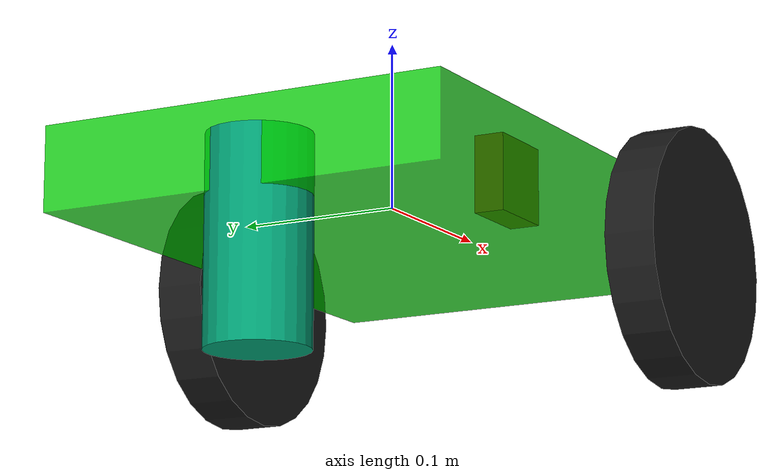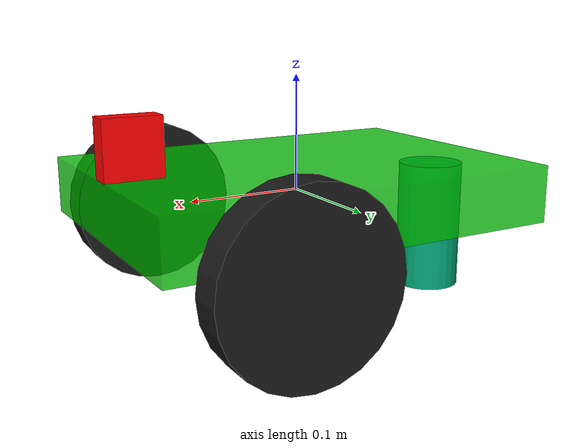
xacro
<?xml version="1.0"?>
<robot name="Jet" xmlns:xacro="http://www.ros.org/wiki/xacro">

  <!-- Import all Gazebo-customization elements, including Gazebo colors -->
  <xacro:include filename="$(find jet_description)/urdf/jet.gazebo"/>
  <!-- Import Rviz colors -->
  <xacro:include filename="$(find jet_description)/urdf/materials.xacro"/>

  <link name="base_link">
  </link>

  <link name="body_link">
    <visual>
      <origin rpy="0 0 0" xyz="0 0 0"/>
      <geometry>
        <box size=".35 .25 .05"/>
      </geometry>
      <material name="green">
        <color rgba="0 .8 .0 .8"/>
      </material>
    </visual>
    <collision>
      <origin rpy="0 0 0" xyz="0 0 0"/>
      <geometry>
        <box size=".35 .25 .05"/>
      </geometry>
    </collision>
    <inertial>
      <mass value="1"/>
      <inertia ixx="1e-3" ixy="0.0" ixz="0.0" iyy="1e-3" iyz="0.0" izz="1e-3"/>
    </inertial>
  </link>

  <link name="caster">
    <visual name='caster_visual'>
      <origin rpy="0 0 0" xyz="0 0 0"/>
      <geometry>
        <cylinder radius="0.03" length="0.12"/>
      </geometry>
    </visual>
    <collision name='caster_collision'>
      <origin rpy="0 0 0" xyz="0 0 0"/>
      <geometry>
        <cylinder radius="0.03" length="0.12"/>
      </geometry>

      <surface>
        <friction>
          <ode>
            <mu>0</mu>
            <mu2>0</mu2>
            <slip1>1.0</slip1>
            <slip2>1.0</slip2>
          </ode>
        </friction>
      </surface>
    </collision>
    <inertial>
      <mass value="10"/>
      <inertia ixx=".01425" ixy="0.0" ixz="0.0" iyy=".01425" iyz="0.0" izz=".0045"/>
    </inertial>
  </link>

  <link name="right_wheel">
    <visual>
      <geometry>
        <cylinder length="0.03" radius="0.0762"/>
      </geometry>
      <origin rpy="0 1.57075 1.57075" xyz="0 0 0"/>
      <material name="gray">
        <color rgba=".1 .1 .1 1"/>
      </material>
    </visual>
    <collision>
      <geometry>
        <cylinder length="0.03" radius="0.0762"/>
      </geometry>
      <origin rpy="0 1.57075 1.57075" xyz="0 0 0"/>
    </collision>
    <inertial>
      <mass value="1"/>
      <inertia ixx="1e-3" ixy="0.0" ixz="0.0" iyy="1e-3" iyz="0.0" izz="1e-3"/>
    </inertial>
  </link>

  <link name="left_wheel">
    <visual>
      <geometry>
        <cylinder length="0.03" radius="0.0762"/>
      </geometry>
      <origin rpy="0 1.57075 1.57075" xyz="0 0 0"/>
      <material name="gray">
        <color rgba=".1 .1 .1 1"/>
      </material>
    </visual>
    <collision>
      <geometry>
        <cylinder length="0.03" radius="0.0762"/>
      </geometry>
      <origin rpy="0 1.57075 1.57075" xyz="0 0 0"/>
    </collision>
    <inertial>
      <mass value="10"/>
      <inertia ixx="1e-3" ixy="0.0" ixz="0.0" iyy="1e-3" iyz="0.0" izz="1e-3"/>
    </inertial>
  </link>

  <link name="sonar1_link">
    <inertial>
      <mass value="1e-5" />
      <origin xyz="0 0 0" rpy="0 0 0"/>
      <inertia ixx="1e-6" ixy="0" ixz="0" iyy="1e-6" iyz="0" izz="1e-6" />
    </inertial>
  </link>

  <link name="sonar2_link">
    <inertial>
      <mass value="1e-5" />
      <origin xyz="0 0 0" rpy="0 0 0"/>
      <inertia ixx="1e-6" ixy="0" ixz="0" iyy="1e-6" iyz="0" izz="1e-6" />
    </inertial>
  </link>

  <link name="sonar3_link">
    <inertial>
      <mass value="1e-5" />
      <origin xyz="0 0 0" rpy="0 0 0"/>
      <inertia ixx="1e-6" ixy="0" ixz="0" iyy="1e-6" iyz="0" izz="1e-6" />
    </inertial>
  </link>

  <link name="camera_link">
    <collision>
      <origin xyz="0 0 0" rpy="0 0 0"/>
      <geometry>
        <box size=".05 .02 .05"/>
      </geometry>
    </collision>

    <visual>
      <origin xyz="0 0 0" rpy="0 0 0"/>
      <geometry>
        <box size=".05 .02 .05"/>
      </geometry>
      <material name="red">
        <color rgba="1.0 0 0 1"/>
      </material>
    </visual>

    <inertial>
      <mass value="1e-5" />
      <origin xyz="0 0 0" rpy="0 0 0"/>
      <inertia ixx="1e-6" ixy="0" ixz="0" iyy="1e-6" iyz="0" izz="1e-6" />
    </inertial>
  </link>

  <link name="gyro_link">
    <inertial>
      <mass value="0.001"/>
      <origin rpy="0 0 0" xyz="0 0 0"/>
      <inertia ixx="0.0001" ixy="0" ixz="0" iyy="0.000001" iyz="0" izz="0.0001"/>
    </inertial>
  </link>

  <joint name="body_base" type="fixed">
    <axis xyz="1 0 0"/>
    <origin xyz="0 0 0"/>
    <parent link="base_link"/>
    <child link="body_link"/>
  </joint>

  <joint name="imu_joint" type="fixed">
    <axis xyz="1 0 0"/>
    <origin xyz="0 0 0"/>
    <parent link="body_link"/>
    <child link="gyro_link"/>
  </joint>

  <joint name="sonar1_joint" type="fixed">
      <axis xyz="0 1 0" />
      <origin xyz="-.1 -.15 -.05" rpy="0 0 -2.356125"/>
      <parent link="body_link"/>
      <child link="sonar1_link"/>
  </joint>

  <joint name="sonar2_joint" type="fixed">
      <axis xyz="0 1 0" />
      <origin xyz="0 -.15 -.05" rpy="0 0 -1.57075"/>
      <parent link="body_link"/>
      <child link="sonar2_link"/>
  </joint>

  <joint name="sonar3_joint" type="fixed">
      <axis xyz="0 1 0" />
      <origin xyz=".1 -.15 -.05" rpy="0 0 -.785375"/>
      <parent link="body_link"/>
      <child link="sonar3_link"/>
  </joint>

  <joint name="camera_joint" type="fixed">
      <axis xyz="1 0 0" />
      <origin xyz=".15 0 .05" rpy="0 0 0"/>
      <parent link="body_link"/>
      <child link="camera_link"/>
  </joint>

  <joint name="caster_base_joint" type="fixed">
    <parent link="body_link"/>
    <child link="caster"/>
    <origin xyz="-.15 0 -.05"/>
    <axis xyz="0 0 1"/>
  </joint>

  <joint name="right_wheel_joint" type="revolute">
    <parent link="body_link"/>
    <child link="right_wheel"/>
    <origin xyz="0.08 -.15 -.03"/>
    <axis xyz="0 1 0"/>
    <limit effort="100" velocity="100.0" lower="-5000" upper="5000" />
  </joint>

  <joint name="left_wheel_joint" type="revolute">
    <parent link="body_link"/>
    <child link="left_wheel"/>
    <origin xyz="0.08 .15 -.03"/>
    <axis xyz="0 1 0"/>
    <limit effort="100" velocity="100.0" lower="-5000" upper="5000"/>
  </joint>

  <transmission name="tran_left_wheel">
    <type>transmission_interface/SimpleTransmission</type>
    <joint name="left_wheel_joint">
      <hardwareInterface>VelocityJointInterface</hardwareInterface>
    </joint>
    <actuator name="motor_left">
      <hardwareInterface>VelocityJointInterface</hardwareInterface>
      <mechanicalReduction>1</mechanicalReduction>
    </actuator>
  </transmission>

  <transmission name="tran_right_wheel">
    <type>transmission_interface/SimpleTransmission</type>
    <joint name="right_wheel_joint">
      <hardwareInterface>VelocityJointInterface</hardwareInterface>
    </joint>
    <actuator name="motor_right">
      <hardwareInterface>VelocityJointInterface</hardwareInterface>
      <mechanicalReduction>1</mechanicalReduction>
    </actuator>
  </transmission>

</robot>
